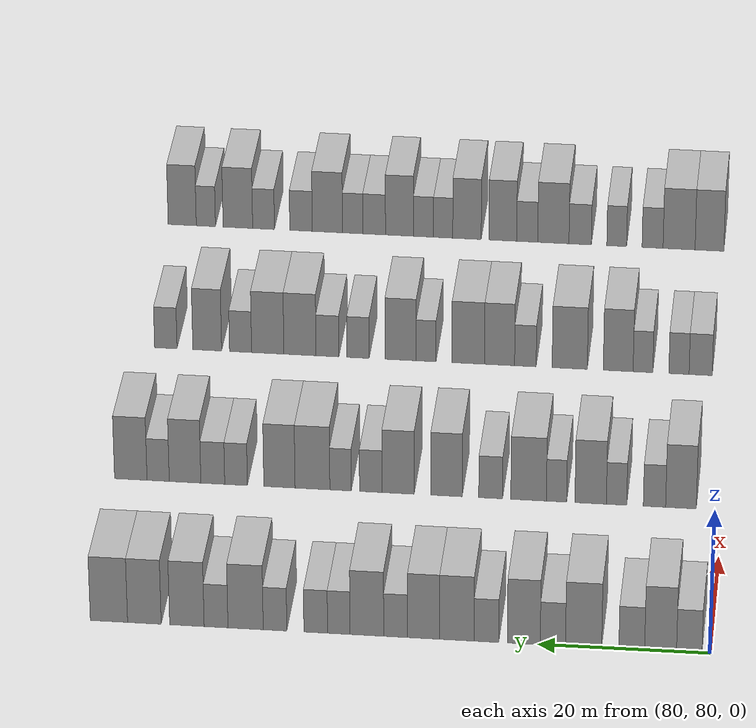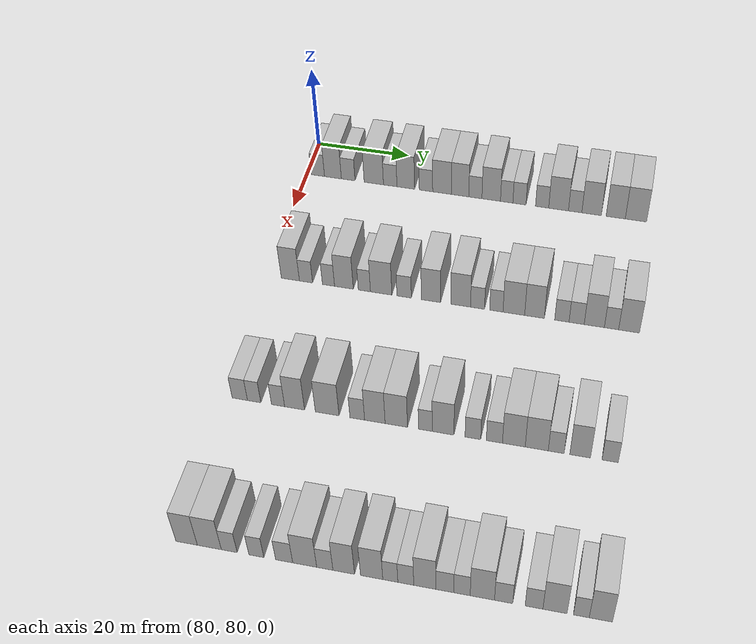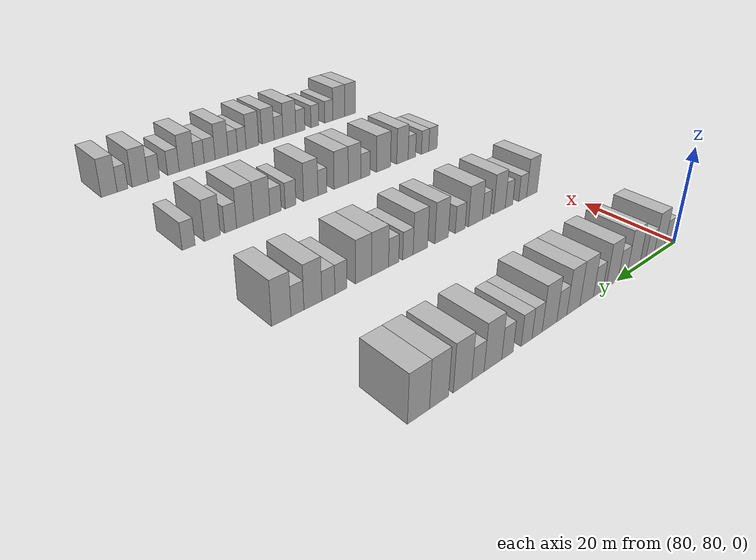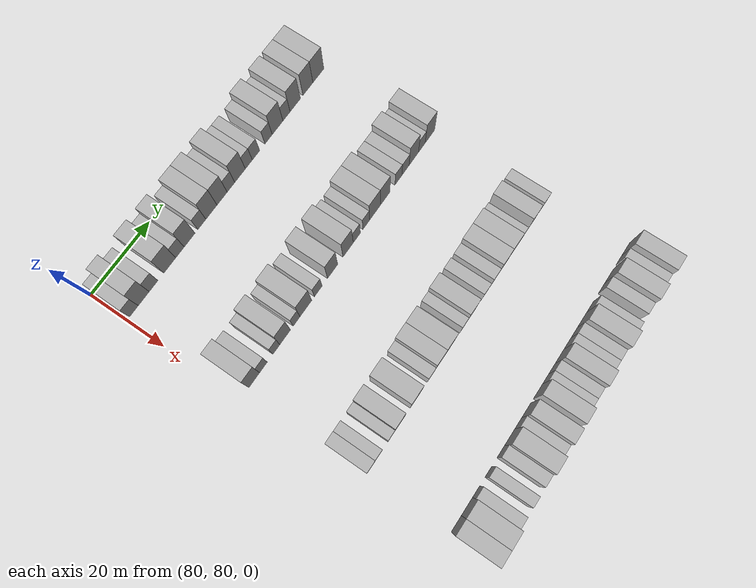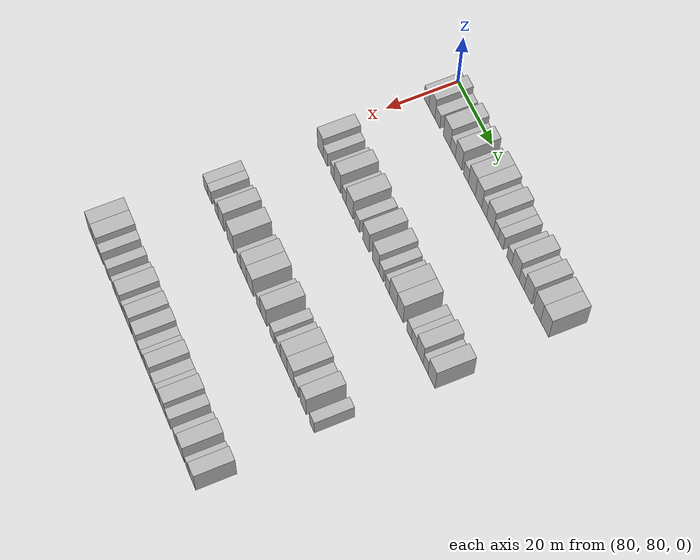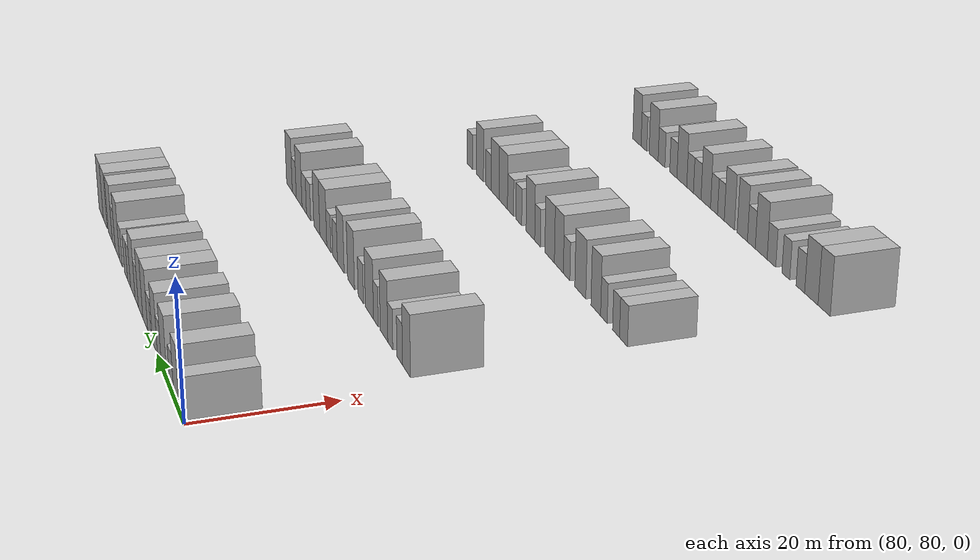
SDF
<sdf version="1.6">
 <world name="default">
  <model name="building_599">
   <static>1</static>
   <pose>85.0000 82.4342 0 0.000000 0.000000 0.000000</pose>
   <link name="link">
    <pose>0 0 3.00 0 0 0</pose>
    <collision name="collision"><geometry><box><size>10.0000 2.9456 6.0000</size></box></geometry></collision>
    <visual name="visual">
     <cast_shadows>0</cast_shadows>
     <geometry><box><size>10.0000 2.9456 6.0000</size></box></geometry>
     <material>
      <script>
       <uri>model://HANNAS_wall/materials/scripts</uri>
       <uri>model://HANNAS_wall/materials/textures</uri>
       <name>vrc/HANNAS_wall</name>
      </script>
     </material>
    </visual>
   </link>
  </model>
  <model name="building_600">
   <static>1</static>
   <pose>85.0000 85.7561 0 0.000000 0.000000 0.000000</pose>
   <link name="link">
    <pose>0 0 4.50 0 0 0</pose>
    <collision name="collision"><geometry><box><size>10.0000 3.6983 9.0000</size></box></geometry></collision>
    <visual name="visual">
     <cast_shadows>0</cast_shadows>
     <geometry><box><size>10.0000 3.6983 9.0000</size></box></geometry>
     <material>
      <script>
       <uri>model://HANNAS_wall/materials/scripts</uri>
       <uri>model://HANNAS_wall/materials/textures</uri>
       <name>vrc/HANNAS_wall</name>
      </script>
     </material>
    </visual>
   </link>
  </model>
  <model name="building_601">
   <static>1</static>
   <pose>85.0000 89.0997 0 0.000000 0.000000 0.000000</pose>
   <link name="link">
    <pose>0 0 3.00 0 0 0</pose>
    <collision name="collision"><geometry><box><size>10.0000 2.9889 6.0000</size></box></geometry></collision>
    <visual name="visual">
     <cast_shadows>0</cast_shadows>
     <geometry><box><size>10.0000 2.9889 6.0000</size></box></geometry>
     <material>
      <script>
       <uri>model://HANNAS_wall/materials/scripts</uri>
       <uri>model://HANNAS_wall/materials/textures</uri>
       <name>vrc/HANNAS_wall</name>
      </script>
     </material>
    </visual>
   </link>
  </model>
  <model name="building_602">
   <static>1</static>
   <pose>85.0000 94.6941 0 0.000000 0.000000 0.000000</pose>
   <link name="link">
    <pose>0 0 4.50 0 0 0</pose>
    <collision name="collision"><geometry><box><size>10.0000 4.1999 9.0000</size></box></geometry></collision>
    <visual name="visual">
     <cast_shadows>0</cast_shadows>
     <geometry><box><size>10.0000 4.1999 9.0000</size></box></geometry>
     <material>
      <script>
       <uri>model://HANNAS_wall/materials/scripts</uri>
       <uri>model://HANNAS_wall/materials/textures</uri>
       <name>vrc/HANNAS_wall</name>
      </script>
     </material>
    </visual>
   </link>
  </model>
  <model name="building_603">
   <static>1</static>
   <pose>85.0000 98.2586 0 0.000000 0.000000 0.000000</pose>
   <link name="link">
    <pose>0 0 3.00 0 0 0</pose>
    <collision name="collision"><geometry><box><size>10.0000 2.9291 6.0000</size></box></geometry></collision>
    <visual name="visual">
     <cast_shadows>0</cast_shadows>
     <geometry><box><size>10.0000 2.9291 6.0000</size></box></geometry>
     <material>
      <script>
       <uri>model://HANNAS_wall/materials/scripts</uri>
       <uri>model://HANNAS_wall/materials/textures</uri>
       <name>vrc/HANNAS_wall</name>
      </script>
     </material>
    </visual>
   </link>
  </model>
  <model name="building_604">
   <static>1</static>
   <pose>85.0000 101.6367 0 0.000000 0.000000 0.000000</pose>
   <link name="link">
    <pose>0 0 4.50 0 0 0</pose>
    <collision name="collision"><geometry><box><size>10.0000 3.8270 9.0000</size></box></geometry></collision>
    <visual name="visual">
     <cast_shadows>0</cast_shadows>
     <geometry><box><size>10.0000 3.8270 9.0000</size></box></geometry>
     <material>
      <script>
       <uri>model://HANNAS_wall/materials/scripts</uri>
       <uri>model://HANNAS_wall/materials/textures</uri>
       <name>vrc/HANNAS_wall</name>
      </script>
     </material>
    </visual>
   </link>
  </model>
  <model name="building_605">
   <static>1</static>
   <pose>85.0000 105.9905 0 0.000000 0.000000 0.000000</pose>
   <link name="link">
    <pose>0 0 3.00 0 0 0</pose>
    <collision name="collision"><geometry><box><size>10.0000 2.8806 6.0000</size></box></geometry></collision>
    <visual name="visual">
     <cast_shadows>0</cast_shadows>
     <geometry><box><size>10.0000 2.8806 6.0000</size></box></geometry>
     <material>
      <script>
       <uri>model://HANNAS_wall/materials/scripts</uri>
       <uri>model://HANNAS_wall/materials/textures</uri>
       <name>vrc/HANNAS_wall</name>
      </script>
     </material>
    </visual>
   </link>
  </model>
  <model name="building_606">
   <static>1</static>
   <pose>85.0000 109.4386 0 0.000000 0.000000 0.000000</pose>
   <link name="link">
    <pose>0 0 4.50 0 0 0</pose>
    <collision name="collision"><geometry><box><size>10.0000 4.0157 9.0000</size></box></geometry></collision>
    <visual name="visual">
     <cast_shadows>0</cast_shadows>
     <geometry><box><size>10.0000 4.0157 9.0000</size></box></geometry>
     <material>
      <script>
       <uri>model://HANNAS_wall/materials/scripts</uri>
       <uri>model://HANNAS_wall/materials/textures</uri>
       <name>vrc/HANNAS_wall</name>
      </script>
     </material>
    </visual>
   </link>
  </model>
  <model name="building_607">
   <static>1</static>
   <pose>85.0000 113.3110 0 0.000000 0.000000 0.000000</pose>
   <link name="link">
    <pose>0 0 4.50 0 0 0</pose>
    <collision name="collision"><geometry><box><size>10.0000 3.7289 9.0000</size></box></geometry></collision>
    <visual name="visual">
     <cast_shadows>0</cast_shadows>
     <geometry><box><size>10.0000 3.7289 9.0000</size></box></geometry>
     <material>
      <script>
       <uri>model://HANNAS_wall/materials/scripts</uri>
       <uri>model://HANNAS_wall/materials/textures</uri>
       <name>vrc/HANNAS_wall</name>
      </script>
     </material>
    </visual>
   </link>
  </model>
  <model name="building_608">
   <static>1</static>
   <pose>85.0000 116.5696 0 0.000000 0.000000 0.000000</pose>
   <link name="link">
    <pose>0 0 3.00 0 0 0</pose>
    <collision name="collision"><geometry><box><size>10.0000 2.7883 6.0000</size></box></geometry></collision>
    <visual name="visual">
     <cast_shadows>0</cast_shadows>
     <geometry><box><size>10.0000 2.7883 6.0000</size></box></geometry>
     <material>
      <script>
       <uri>model://HANNAS_wall/materials/scripts</uri>
       <uri>model://HANNAS_wall/materials/textures</uri>
       <name>vrc/HANNAS_wall</name>
      </script>
     </material>
    </visual>
   </link>
  </model>
  <model name="building_609">
   <static>1</static>
   <pose>85.0000 119.9332 0 0.000000 0.000000 0.000000</pose>
   <link name="link">
    <pose>0 0 4.50 0 0 0</pose>
    <collision name="collision"><geometry><box><size>10.0000 3.9390 9.0000</size></box></geometry></collision>
    <visual name="visual">
     <cast_shadows>0</cast_shadows>
     <geometry><box><size>10.0000 3.9390 9.0000</size></box></geometry>
     <material>
      <script>
       <uri>model://HANNAS_wall/materials/scripts</uri>
       <uri>model://HANNAS_wall/materials/textures</uri>
       <name>vrc/HANNAS_wall</name>
      </script>
     </material>
    </visual>
   </link>
  </model>
  <model name="building_610">
   <static>1</static>
   <pose>85.0000 123.2144 0 0.000000 0.000000 0.000000</pose>
   <link name="link">
    <pose>0 0 3.00 0 0 0</pose>
    <collision name="collision"><geometry><box><size>10.0000 2.6234 6.0000</size></box></geometry></collision>
    <visual name="visual">
     <cast_shadows>0</cast_shadows>
     <geometry><box><size>10.0000 2.6234 6.0000</size></box></geometry>
     <material>
      <script>
       <uri>model://HANNAS_wall/materials/scripts</uri>
       <uri>model://HANNAS_wall/materials/textures</uri>
       <name>vrc/HANNAS_wall</name>
      </script>
     </material>
    </visual>
   </link>
  </model>
  <model name="building_611">
   <static>1</static>
   <pose>85.0000 125.9106 0 0.000000 0.000000 0.000000</pose>
   <link name="link">
    <pose>0 0 3.00 0 0 0</pose>
    <collision name="collision"><geometry><box><size>10.0000 2.7690 6.0000</size></box></geometry></collision>
    <visual name="visual">
     <cast_shadows>0</cast_shadows>
     <geometry><box><size>10.0000 2.7690 6.0000</size></box></geometry>
     <material>
      <script>
       <uri>model://HANNAS_wall/materials/scripts</uri>
       <uri>model://HANNAS_wall/materials/textures</uri>
       <name>vrc/HANNAS_wall</name>
      </script>
     </material>
    </visual>
   </link>
  </model>
  <model name="building_612">
   <static>1</static>
   <pose>85.0000 130.6772 0 0.000000 0.000000 0.000000</pose>
   <link name="link">
    <pose>0 0 3.00 0 0 0</pose>
    <collision name="collision"><geometry><box><size>10.0000 2.7642 6.0000</size></box></geometry></collision>
    <visual name="visual">
     <cast_shadows>0</cast_shadows>
     <geometry><box><size>10.0000 2.7642 6.0000</size></box></geometry>
     <material>
      <script>
       <uri>model://HANNAS_wall/materials/scripts</uri>
       <uri>model://HANNAS_wall/materials/textures</uri>
       <name>vrc/HANNAS_wall</name>
      </script>
     </material>
    </visual>
   </link>
  </model>
  <model name="building_613">
   <static>1</static>
   <pose>85.0000 134.1255 0 0.000000 0.000000 0.000000</pose>
   <link name="link">
    <pose>0 0 4.50 0 0 0</pose>
    <collision name="collision"><geometry><box><size>10.0000 4.1324 9.0000</size></box></geometry></collision>
    <visual name="visual">
     <cast_shadows>0</cast_shadows>
     <geometry><box><size>10.0000 4.1324 9.0000</size></box></geometry>
     <material>
      <script>
       <uri>model://HANNAS_wall/materials/scripts</uri>
       <uri>model://HANNAS_wall/materials/textures</uri>
       <name>vrc/HANNAS_wall</name>
      </script>
     </material>
    </visual>
   </link>
  </model>
  <model name="building_614">
   <static>1</static>
   <pose>85.0000 137.5881 0 0.000000 0.000000 0.000000</pose>
   <link name="link">
    <pose>0 0 3.00 0 0 0</pose>
    <collision name="collision"><geometry><box><size>10.0000 2.7927 6.0000</size></box></geometry></collision>
    <visual name="visual">
     <cast_shadows>0</cast_shadows>
     <geometry><box><size>10.0000 2.7927 6.0000</size></box></geometry>
     <material>
      <script>
       <uri>model://HANNAS_wall/materials/scripts</uri>
       <uri>model://HANNAS_wall/materials/textures</uri>
       <name>vrc/HANNAS_wall</name>
      </script>
     </material>
    </visual>
   </link>
  </model>
  <model name="building_615">
   <static>1</static>
   <pose>85.0000 141.0087 0 0.000000 0.000000 0.000000</pose>
   <link name="link">
    <pose>0 0 4.50 0 0 0</pose>
    <collision name="collision"><geometry><box><size>10.0000 4.0487 9.0000</size></box></geometry></collision>
    <visual name="visual">
     <cast_shadows>0</cast_shadows>
     <geometry><box><size>10.0000 4.0487 9.0000</size></box></geometry>
     <material>
      <script>
       <uri>model://HANNAS_wall/materials/scripts</uri>
       <uri>model://HANNAS_wall/materials/textures</uri>
       <name>vrc/HANNAS_wall</name>
      </script>
     </material>
    </visual>
   </link>
  </model>
  <model name="building_616">
   <static>1</static>
   <pose>85.0000 146.0088 0 0.000000 0.000000 0.000000</pose>
   <link name="link">
    <pose>0 0 4.50 0 0 0</pose>
    <collision name="collision"><geometry><box><size>10.0000 3.9513 9.0000</size></box></geometry></collision>
    <visual name="visual">
     <cast_shadows>0</cast_shadows>
     <geometry><box><size>10.0000 3.9513 9.0000</size></box></geometry>
     <material>
      <script>
       <uri>model://HANNAS_wall/materials/scripts</uri>
       <uri>model://HANNAS_wall/materials/textures</uri>
       <name>vrc/HANNAS_wall</name>
      </script>
     </material>
    </visual>
   </link>
  </model>
  <model name="building_617">
   <static>1</static>
   <pose>85.0000 150.1728 0 0.000000 0.000000 0.000000</pose>
   <link name="link">
    <pose>0 0 4.50 0 0 0</pose>
    <collision name="collision"><geometry><box><size>10.0000 4.3768 9.0000</size></box></geometry></collision>
    <visual name="visual">
     <cast_shadows>0</cast_shadows>
     <geometry><box><size>10.0000 4.3768 9.0000</size></box></geometry>
     <material>
      <script>
       <uri>model://HANNAS_wall/materials/scripts</uri>
       <uri>model://HANNAS_wall/materials/textures</uri>
       <name>vrc/HANNAS_wall</name>
      </script>
     </material>
    </visual>
   </link>
  </model>
  <model name="building_826">
   <static>1</static>
   <pose>115.0000 85.0872 0 0.000000 0.000000 0.000000</pose>
   <link name="link">
    <pose>0 0 4.50 0 0 0</pose>
    <collision name="collision"><geometry><box><size>10.0000 3.6894 9.0000</size></box></geometry></collision>
    <visual name="visual">
     <cast_shadows>0</cast_shadows>
     <geometry><box><size>10.0000 3.6894 9.0000</size></box></geometry>
     <material>
      <script>
       <uri>model://HANNAS_wall/materials/scripts</uri>
       <uri>model://HANNAS_wall/materials/textures</uri>
       <name>vrc/HANNAS_wall</name>
      </script>
     </material>
    </visual>
   </link>
  </model>
  <model name="building_827">
   <static>1</static>
   <pose>115.0000 88.2741 0 0.000000 0.000000 0.000000</pose>
   <link name="link">
    <pose>0 0 3.00 0 0 0</pose>
    <collision name="collision"><geometry><box><size>10.0000 2.6844 6.0000</size></box></geometry></collision>
    <visual name="visual">
     <cast_shadows>0</cast_shadows>
     <geometry><box><size>10.0000 2.6844 6.0000</size></box></geometry>
     <material>
      <script>
       <uri>model://HANNAS_wall/materials/scripts</uri>
       <uri>model://HANNAS_wall/materials/textures</uri>
       <name>vrc/HANNAS_wall</name>
      </script>
     </material>
    </visual>
   </link>
  </model>
  <model name="building_828">
   <static>1</static>
   <pose>115.0000 92.8427 0 0.000000 0.000000 0.000000</pose>
   <link name="link">
    <pose>0 0 3.00 0 0 0</pose>
    <collision name="collision"><geometry><box><size>10.0000 2.4529 6.0000</size></box></geometry></collision>
    <visual name="visual">
     <cast_shadows>0</cast_shadows>
     <geometry><box><size>10.0000 2.4529 6.0000</size></box></geometry>
     <material>
      <script>
       <uri>model://HANNAS_wall/materials/scripts</uri>
       <uri>model://HANNAS_wall/materials/textures</uri>
       <name>vrc/HANNAS_wall</name>
      </script>
     </material>
    </visual>
   </link>
  </model>
  <model name="building_829">
   <static>1</static>
   <pose>115.0000 95.9619 0 0.000000 0.000000 0.000000</pose>
   <link name="link">
    <pose>0 0 4.50 0 0 0</pose>
    <collision name="collision"><geometry><box><size>10.0000 3.7856 9.0000</size></box></geometry></collision>
    <visual name="visual">
     <cast_shadows>0</cast_shadows>
     <geometry><box><size>10.0000 3.7856 9.0000</size></box></geometry>
     <material>
      <script>
       <uri>model://HANNAS_wall/materials/scripts</uri>
       <uri>model://HANNAS_wall/materials/textures</uri>
       <name>vrc/HANNAS_wall</name>
      </script>
     </material>
    </visual>
   </link>
  </model>
  <model name="building_830">
   <static>1</static>
   <pose>115.0000 100.0785 0 0.000000 0.000000 0.000000</pose>
   <link name="link">
    <pose>0 0 3.00 0 0 0</pose>
    <collision name="collision"><geometry><box><size>10.0000 2.4476 6.0000</size></box></geometry></collision>
    <visual name="visual">
     <cast_shadows>0</cast_shadows>
     <geometry><box><size>10.0000 2.4476 6.0000</size></box></geometry>
     <material>
      <script>
       <uri>model://HANNAS_wall/materials/scripts</uri>
       <uri>model://HANNAS_wall/materials/textures</uri>
       <name>vrc/HANNAS_wall</name>
      </script>
     </material>
    </visual>
   </link>
  </model>
  <model name="building_831">
   <static>1</static>
   <pose>115.0000 103.4479 0 0.000000 0.000000 0.000000</pose>
   <link name="link">
    <pose>0 0 4.50 0 0 0</pose>
    <collision name="collision"><geometry><box><size>10.0000 4.2911 9.0000</size></box></geometry></collision>
    <visual name="visual">
     <cast_shadows>0</cast_shadows>
     <geometry><box><size>10.0000 4.2911 9.0000</size></box></geometry>
     <material>
      <script>
       <uri>model://HANNAS_wall/materials/scripts</uri>
       <uri>model://HANNAS_wall/materials/textures</uri>
       <name>vrc/HANNAS_wall</name>
      </script>
     </material>
    </visual>
   </link>
  </model>
  <model name="building_832">
   <static>1</static>
   <pose>115.0000 108.0309 0 0.000000 0.000000 0.000000</pose>
   <link name="link">
    <pose>0 0 3.00 0 0 0</pose>
    <collision name="collision"><geometry><box><size>10.0000 2.8750 6.0000</size></box></geometry></collision>
    <visual name="visual">
     <cast_shadows>0</cast_shadows>
     <geometry><box><size>10.0000 2.8750 6.0000</size></box></geometry>
     <material>
      <script>
       <uri>model://HANNAS_wall/materials/scripts</uri>
       <uri>model://HANNAS_wall/materials/textures</uri>
       <name>vrc/HANNAS_wall</name>
      </script>
     </material>
    </visual>
   </link>
  </model>
  <model name="building_833">
   <static>1</static>
   <pose>115.0000 113.3733 0 0.000000 0.000000 0.000000</pose>
   <link name="link">
    <pose>0 0 4.50 0 0 0</pose>
    <collision name="collision"><geometry><box><size>10.0000 3.8098 9.0000</size></box></geometry></collision>
    <visual name="visual">
     <cast_shadows>0</cast_shadows>
     <geometry><box><size>10.0000 3.8098 9.0000</size></box></geometry>
     <material>
      <script>
       <uri>model://HANNAS_wall/materials/scripts</uri>
       <uri>model://HANNAS_wall/materials/textures</uri>
       <name>vrc/HANNAS_wall</name>
      </script>
     </material>
    </visual>
   </link>
  </model>
  <model name="building_834">
   <static>1</static>
   <pose>115.0000 119.2258 0 0.000000 0.000000 0.000000</pose>
   <link name="link">
    <pose>0 0 4.50 0 0 0</pose>
    <collision name="collision"><geometry><box><size>10.0000 3.8952 9.0000</size></box></geometry></collision>
    <visual name="visual">
     <cast_shadows>0</cast_shadows>
     <geometry><box><size>10.0000 3.8952 9.0000</size></box></geometry>
     <material>
      <script>
       <uri>model://HANNAS_wall/materials/scripts</uri>
       <uri>model://HANNAS_wall/materials/textures</uri>
       <name>vrc/HANNAS_wall</name>
      </script>
     </material>
    </visual>
   </link>
  </model>
  <model name="building_835">
   <static>1</static>
   <pose>115.0000 122.5412 0 0.000000 0.000000 0.000000</pose>
   <link name="link">
    <pose>0 0 3.00 0 0 0</pose>
    <collision name="collision"><geometry><box><size>10.0000 2.7357 6.0000</size></box></geometry></collision>
    <visual name="visual">
     <cast_shadows>0</cast_shadows>
     <geometry><box><size>10.0000 2.7357 6.0000</size></box></geometry>
     <material>
      <script>
       <uri>model://HANNAS_wall/materials/scripts</uri>
       <uri>model://HANNAS_wall/materials/textures</uri>
       <name>vrc/HANNAS_wall</name>
      </script>
     </material>
    </visual>
   </link>
  </model>
  <model name="building_836">
   <static>1</static>
   <pose>115.0000 126.2110 0 0.000000 0.000000 0.000000</pose>
   <link name="link">
    <pose>0 0 3.00 0 0 0</pose>
    <collision name="collision"><geometry><box><size>10.0000 2.6039 6.0000</size></box></geometry></collision>
    <visual name="visual">
     <cast_shadows>0</cast_shadows>
     <geometry><box><size>10.0000 2.6039 6.0000</size></box></geometry>
     <material>
      <script>
       <uri>model://HANNAS_wall/materials/scripts</uri>
       <uri>model://HANNAS_wall/materials/textures</uri>
       <name>vrc/HANNAS_wall</name>
      </script>
     </material>
    </visual>
   </link>
  </model>
  <model name="building_837">
   <static>1</static>
   <pose>115.0000 129.6225 0 0.000000 0.000000 0.000000</pose>
   <link name="link">
    <pose>0 0 4.50 0 0 0</pose>
    <collision name="collision"><geometry><box><size>10.0000 4.2190 9.0000</size></box></geometry></collision>
    <visual name="visual">
     <cast_shadows>0</cast_shadows>
     <geometry><box><size>10.0000 4.2190 9.0000</size></box></geometry>
     <material>
      <script>
       <uri>model://HANNAS_wall/materials/scripts</uri>
       <uri>model://HANNAS_wall/materials/textures</uri>
       <name>vrc/HANNAS_wall</name>
      </script>
     </material>
    </visual>
   </link>
  </model>
  <model name="building_838">
   <static>1</static>
   <pose>115.0000 133.6316 0 0.000000 0.000000 0.000000</pose>
   <link name="link">
    <pose>0 0 4.50 0 0 0</pose>
    <collision name="collision"><geometry><box><size>10.0000 3.7993 9.0000</size></box></geometry></collision>
    <visual name="visual">
     <cast_shadows>0</cast_shadows>
     <geometry><box><size>10.0000 3.7993 9.0000</size></box></geometry>
     <material>
      <script>
       <uri>model://HANNAS_wall/materials/scripts</uri>
       <uri>model://HANNAS_wall/materials/textures</uri>
       <name>vrc/HANNAS_wall</name>
      </script>
     </material>
    </visual>
   </link>
  </model>
  <model name="building_839">
   <static>1</static>
   <pose>115.0000 138.9121 0 0.000000 0.000000 0.000000</pose>
   <link name="link">
    <pose>0 0 3.00 0 0 0</pose>
    <collision name="collision"><geometry><box><size>10.0000 2.7617 6.0000</size></box></geometry></collision>
    <visual name="visual">
     <cast_shadows>0</cast_shadows>
     <geometry><box><size>10.0000 2.7617 6.0000</size></box></geometry>
     <material>
      <script>
       <uri>model://HANNAS_wall/materials/scripts</uri>
       <uri>model://HANNAS_wall/materials/textures</uri>
       <name>vrc/HANNAS_wall</name>
      </script>
     </material>
    </visual>
   </link>
  </model>
  <model name="building_840">
   <static>1</static>
   <pose>115.0000 141.7462 0 0.000000 0.000000 0.000000</pose>
   <link name="link">
    <pose>0 0 3.00 0 0 0</pose>
    <collision name="collision"><geometry><box><size>10.0000 2.9064 6.0000</size></box></geometry></collision>
    <visual name="visual">
     <cast_shadows>0</cast_shadows>
     <geometry><box><size>10.0000 2.9064 6.0000</size></box></geometry>
     <material>
      <script>
       <uri>model://HANNAS_wall/materials/scripts</uri>
       <uri>model://HANNAS_wall/materials/textures</uri>
       <name>vrc/HANNAS_wall</name>
      </script>
     </material>
    </visual>
   </link>
  </model>
  <model name="building_841">
   <static>1</static>
   <pose>115.0000 145.1262 0 0.000000 0.000000 0.000000</pose>
   <link name="link">
    <pose>0 0 4.50 0 0 0</pose>
    <collision name="collision"><geometry><box><size>10.0000 3.8536 9.0000</size></box></geometry></collision>
    <visual name="visual">
     <cast_shadows>0</cast_shadows>
     <geometry><box><size>10.0000 3.8536 9.0000</size></box></geometry>
     <material>
      <script>
       <uri>model://HANNAS_wall/materials/scripts</uri>
       <uri>model://HANNAS_wall/materials/textures</uri>
       <name>vrc/HANNAS_wall</name>
      </script>
     </material>
    </visual>
   </link>
  </model>
  <model name="building_842">
   <static>1</static>
   <pose>115.0000 148.4080 0 0.000000 0.000000 0.000000</pose>
   <link name="link">
    <pose>0 0 3.00 0 0 0</pose>
    <collision name="collision"><geometry><box><size>10.0000 2.7101 6.0000</size></box></geometry></collision>
    <visual name="visual">
     <cast_shadows>0</cast_shadows>
     <geometry><box><size>10.0000 2.7101 6.0000</size></box></geometry>
     <material>
      <script>
       <uri>model://HANNAS_wall/materials/scripts</uri>
       <uri>model://HANNAS_wall/materials/textures</uri>
       <name>vrc/HANNAS_wall</name>
      </script>
     </material>
    </visual>
   </link>
  </model>
  <model name="building_843">
   <static>1</static>
   <pose>115.0000 151.7421 0 0.000000 0.000000 0.000000</pose>
   <link name="link">
    <pose>0 0 4.50 0 0 0</pose>
    <collision name="collision"><geometry><box><size>10.0000 3.9582 9.0000</size></box></geometry></collision>
    <visual name="visual">
     <cast_shadows>0</cast_shadows>
     <geometry><box><size>10.0000 3.9582 9.0000</size></box></geometry>
     <material>
      <script>
       <uri>model://HANNAS_wall/materials/scripts</uri>
       <uri>model://HANNAS_wall/materials/textures</uri>
       <name>vrc/HANNAS_wall</name>
      </script>
     </material>
    </visual>
   </link>
  </model>
  <model name="building_1059">
   <static>1</static>
   <pose>145.0000 84.3228 0 0.000000 0.000000 0.000000</pose>
   <link name="link">
    <pose>0 0 3.00 0 0 0</pose>
    <collision name="collision"><geometry><box><size>10.0000 2.8881 6.0000</size></box></geometry></collision>
    <visual name="visual">
     <cast_shadows>0</cast_shadows>
     <geometry><box><size>10.0000 2.8881 6.0000</size></box></geometry>
     <material>
      <script>
       <uri>model://HANNAS_wall/materials/scripts</uri>
       <uri>model://HANNAS_wall/materials/textures</uri>
       <name>vrc/HANNAS_wall</name>
      </script>
     </material>
    </visual>
   </link>
  </model>
  <model name="building_1060">
   <static>1</static>
   <pose>145.0000 87.0273 0 0.000000 0.000000 0.000000</pose>
   <link name="link">
    <pose>0 0 3.00 0 0 0</pose>
    <collision name="collision"><geometry><box><size>10.0000 2.5209 6.0000</size></box></geometry></collision>
    <visual name="visual">
     <cast_shadows>0</cast_shadows>
     <geometry><box><size>10.0000 2.5209 6.0000</size></box></geometry>
     <material>
      <script>
       <uri>model://HANNAS_wall/materials/scripts</uri>
       <uri>model://HANNAS_wall/materials/textures</uri>
       <name>vrc/HANNAS_wall</name>
      </script>
     </material>
    </visual>
   </link>
  </model>
  <model name="building_1061">
   <static>1</static>
   <pose>145.0000 91.5177 0 0.000000 0.000000 0.000000</pose>
   <link name="link">
    <pose>0 0 3.00 0 0 0</pose>
    <collision name="collision"><geometry><box><size>10.0000 2.4597 6.0000</size></box></geometry></collision>
    <visual name="visual">
     <cast_shadows>0</cast_shadows>
     <geometry><box><size>10.0000 2.4597 6.0000</size></box></geometry>
     <material>
      <script>
       <uri>model://HANNAS_wall/materials/scripts</uri>
       <uri>model://HANNAS_wall/materials/textures</uri>
       <name>vrc/HANNAS_wall</name>
      </script>
     </material>
    </visual>
   </link>
  </model>
  <model name="building_1062">
   <static>1</static>
   <pose>145.0000 94.6092 0 0.000000 0.000000 0.000000</pose>
   <link name="link">
    <pose>0 0 4.50 0 0 0</pose>
    <collision name="collision"><geometry><box><size>10.0000 3.7234 9.0000</size></box></geometry></collision>
    <visual name="visual">
     <cast_shadows>0</cast_shadows>
     <geometry><box><size>10.0000 3.7234 9.0000</size></box></geometry>
     <material>
      <script>
       <uri>model://HANNAS_wall/materials/scripts</uri>
       <uri>model://HANNAS_wall/materials/textures</uri>
       <name>vrc/HANNAS_wall</name>
      </script>
     </material>
    </visual>
   </link>
  </model>
  <model name="building_1063">
   <static>1</static>
   <pose>145.0000 100.6682 0 0.000000 0.000000 0.000000</pose>
   <link name="link">
    <pose>0 0 4.50 0 0 0</pose>
    <collision name="collision"><geometry><box><size>10.0000 4.3946 9.0000</size></box></geometry></collision>
    <visual name="visual">
     <cast_shadows>0</cast_shadows>
     <geometry><box><size>10.0000 4.3946 9.0000</size></box></geometry>
     <material>
      <script>
       <uri>model://HANNAS_wall/materials/scripts</uri>
       <uri>model://HANNAS_wall/materials/textures</uri>
       <name>vrc/HANNAS_wall</name>
      </script>
     </material>
    </visual>
   </link>
  </model>
  <model name="building_1064">
   <static>1</static>
   <pose>145.0000 106.2151 0 0.000000 0.000000 0.000000</pose>
   <link name="link">
    <pose>0 0 3.00 0 0 0</pose>
    <collision name="collision"><geometry><box><size>10.0000 2.6991 6.0000</size></box></geometry></collision>
    <visual name="visual">
     <cast_shadows>0</cast_shadows>
     <geometry><box><size>10.0000 2.6991 6.0000</size></box></geometry>
     <material>
      <script>
       <uri>model://HANNAS_wall/materials/scripts</uri>
       <uri>model://HANNAS_wall/materials/textures</uri>
       <name>vrc/HANNAS_wall</name>
      </script>
     </material>
    </visual>
   </link>
  </model>
  <model name="building_1065">
   <static>1</static>
   <pose>145.0000 109.4443 0 0.000000 0.000000 0.000000</pose>
   <link name="link">
    <pose>0 0 4.50 0 0 0</pose>
    <collision name="collision"><geometry><box><size>10.0000 3.7592 9.0000</size></box></geometry></collision>
    <visual name="visual">
     <cast_shadows>0</cast_shadows>
     <geometry><box><size>10.0000 3.7592 9.0000</size></box></geometry>
     <material>
      <script>
       <uri>model://HANNAS_wall/materials/scripts</uri>
       <uri>model://HANNAS_wall/materials/textures</uri>
       <name>vrc/HANNAS_wall</name>
      </script>
     </material>
    </visual>
   </link>
  </model>
  <model name="building_1066">
   <static>1</static>
   <pose>145.0000 113.3664 0 0.000000 0.000000 0.000000</pose>
   <link name="link">
    <pose>0 0 4.50 0 0 0</pose>
    <collision name="collision"><geometry><box><size>10.0000 4.0850 9.0000</size></box></geometry></collision>
    <visual name="visual">
     <cast_shadows>0</cast_shadows>
     <geometry><box><size>10.0000 4.0850 9.0000</size></box></geometry>
     <material>
      <script>
       <uri>model://HANNAS_wall/materials/scripts</uri>
       <uri>model://HANNAS_wall/materials/textures</uri>
       <name>vrc/HANNAS_wall</name>
      </script>
     </material>
    </visual>
   </link>
  </model>
  <model name="building_1067">
   <static>1</static>
   <pose>145.0000 118.6525 0 0.000000 0.000000 0.000000</pose>
   <link name="link">
    <pose>0 0 3.00 0 0 0</pose>
    <collision name="collision"><geometry><box><size>10.0000 2.4872 6.0000</size></box></geometry></collision>
    <visual name="visual">
     <cast_shadows>0</cast_shadows>
     <geometry><box><size>10.0000 2.4872 6.0000</size></box></geometry>
     <material>
      <script>
       <uri>model://HANNAS_wall/materials/scripts</uri>
       <uri>model://HANNAS_wall/materials/textures</uri>
       <name>vrc/HANNAS_wall</name>
      </script>
     </material>
    </visual>
   </link>
  </model>
  <model name="building_1068">
   <static>1</static>
   <pose>145.0000 121.8524 0 0.000000 0.000000 0.000000</pose>
   <link name="link">
    <pose>0 0 4.50 0 0 0</pose>
    <collision name="collision"><geometry><box><size>10.0000 3.9126 9.0000</size></box></geometry></collision>
    <visual name="visual">
     <cast_shadows>0</cast_shadows>
     <geometry><box><size>10.0000 3.9126 9.0000</size></box></geometry>
     <material>
      <script>
       <uri>model://HANNAS_wall/materials/scripts</uri>
       <uri>model://HANNAS_wall/materials/textures</uri>
       <name>vrc/HANNAS_wall</name>
      </script>
     </material>
    </visual>
   </link>
  </model>
  <model name="building_1069">
   <static>1</static>
   <pose>145.0000 127.2126 0 0.000000 0.000000 0.000000</pose>
   <link name="link">
    <pose>0 0 3.00 0 0 0</pose>
    <collision name="collision"><geometry><box><size>10.0000 2.8079 6.0000</size></box></geometry></collision>
    <visual name="visual">
     <cast_shadows>0</cast_shadows>
     <geometry><box><size>10.0000 2.8079 6.0000</size></box></geometry>
     <material>
      <script>
       <uri>model://HANNAS_wall/materials/scripts</uri>
       <uri>model://HANNAS_wall/materials/textures</uri>
       <name>vrc/HANNAS_wall</name>
      </script>
     </material>
    </visual>
   </link>
  </model>
  <model name="building_1070">
   <static>1</static>
   <pose>145.0000 131.0553 0 0.000000 0.000000 0.000000</pose>
   <link name="link">
    <pose>0 0 3.00 0 0 0</pose>
    <collision name="collision"><geometry><box><size>10.0000 2.8774 6.0000</size></box></geometry></collision>
    <visual name="visual">
     <cast_shadows>0</cast_shadows>
     <geometry><box><size>10.0000 2.8774 6.0000</size></box></geometry>
     <material>
      <script>
       <uri>model://HANNAS_wall/materials/scripts</uri>
       <uri>model://HANNAS_wall/materials/textures</uri>
       <name>vrc/HANNAS_wall</name>
      </script>
     </material>
    </visual>
   </link>
  </model>
  <model name="building_1071">
   <static>1</static>
   <pose>145.0000 134.5196 0 0.000000 0.000000 0.000000</pose>
   <link name="link">
    <pose>0 0 4.50 0 0 0</pose>
    <collision name="collision"><geometry><box><size>10.0000 4.0513 9.0000</size></box></geometry></collision>
    <visual name="visual">
     <cast_shadows>0</cast_shadows>
     <geometry><box><size>10.0000 4.0513 9.0000</size></box></geometry>
     <material>
      <script>
       <uri>model://HANNAS_wall/materials/scripts</uri>
       <uri>model://HANNAS_wall/materials/textures</uri>
       <name>vrc/HANNAS_wall</name>
      </script>
     </material>
    </visual>
   </link>
  </model>
  <model name="building_1072">
   <static>1</static>
   <pose>145.0000 138.5822 0 0.000000 0.000000 0.000000</pose>
   <link name="link">
    <pose>0 0 4.50 0 0 0</pose>
    <collision name="collision"><geometry><box><size>10.0000 4.0738 9.0000</size></box></geometry></collision>
    <visual name="visual">
     <cast_shadows>0</cast_shadows>
     <geometry><box><size>10.0000 4.0738 9.0000</size></box></geometry>
     <material>
      <script>
       <uri>model://HANNAS_wall/materials/scripts</uri>
       <uri>model://HANNAS_wall/materials/textures</uri>
       <name>vrc/HANNAS_wall</name>
      </script>
     </material>
    </visual>
   </link>
  </model>
  <model name="building_1073">
   <static>1</static>
   <pose>145.0000 142.0116 0 0.000000 0.000000 0.000000</pose>
   <link name="link">
    <pose>0 0 3.00 0 0 0</pose>
    <collision name="collision"><geometry><box><size>10.0000 2.7849 6.0000</size></box></geometry></collision>
    <visual name="visual">
     <cast_shadows>0</cast_shadows>
     <geometry><box><size>10.0000 2.7849 6.0000</size></box></geometry>
     <material>
      <script>
       <uri>model://HANNAS_wall/materials/scripts</uri>
       <uri>model://HANNAS_wall/materials/textures</uri>
       <name>vrc/HANNAS_wall</name>
      </script>
     </material>
    </visual>
   </link>
  </model>
  <model name="building_1074">
   <static>1</static>
   <pose>145.0000 146.2197 0 0.000000 0.000000 0.000000</pose>
   <link name="link">
    <pose>0 0 4.50 0 0 0</pose>
    <collision name="collision"><geometry><box><size>10.0000 3.6313 9.0000</size></box></geometry></collision>
    <visual name="visual">
     <cast_shadows>0</cast_shadows>
     <geometry><box><size>10.0000 3.6313 9.0000</size></box></geometry>
     <material>
      <script>
       <uri>model://HANNAS_wall/materials/scripts</uri>
       <uri>model://HANNAS_wall/materials/textures</uri>
       <name>vrc/HANNAS_wall</name>
      </script>
     </material>
    </visual>
   </link>
  </model>
  <model name="building_1075">
   <static>1</static>
   <pose>145.0000 151.4515 0 0.000000 0.000000 0.000000</pose>
   <link name="link">
    <pose>0 0 3.00 0 0 0</pose>
    <collision name="collision"><geometry><box><size>10.0000 2.8323 6.0000</size></box></geometry></collision>
    <visual name="visual">
     <cast_shadows>0</cast_shadows>
     <geometry><box><size>10.0000 2.8323 6.0000</size></box></geometry>
     <material>
      <script>
       <uri>model://HANNAS_wall/materials/scripts</uri>
       <uri>model://HANNAS_wall/materials/textures</uri>
       <name>vrc/HANNAS_wall</name>
      </script>
     </material>
    </visual>
   </link>
  </model>
  <model name="building_1290">
   <static>1</static>
   <pose>175.0000 84.7911 0 0.000000 0.000000 0.000000</pose>
   <link name="link">
    <pose>0 0 4.50 0 0 0</pose>
    <collision name="collision"><geometry><box><size>10.0000 3.7116 9.0000</size></box></geometry></collision>
    <visual name="visual">
     <cast_shadows>0</cast_shadows>
     <geometry><box><size>10.0000 3.7116 9.0000</size></box></geometry>
     <material>
      <script>
       <uri>model://HANNAS_wall/materials/scripts</uri>
       <uri>model://HANNAS_wall/materials/textures</uri>
       <name>vrc/HANNAS_wall</name>
      </script>
     </material>
    </visual>
   </link>
  </model>
  <model name="building_1291">
   <static>1</static>
   <pose>175.0000 88.7138 0 0.000000 0.000000 0.000000</pose>
   <link name="link">
    <pose>0 0 4.50 0 0 0</pose>
    <collision name="collision"><geometry><box><size>10.0000 4.1338 9.0000</size></box></geometry></collision>
    <visual name="visual">
     <cast_shadows>0</cast_shadows>
     <geometry><box><size>10.0000 4.1338 9.0000</size></box></geometry>
     <material>
      <script>
       <uri>model://HANNAS_wall/materials/scripts</uri>
       <uri>model://HANNAS_wall/materials/textures</uri>
       <name>vrc/HANNAS_wall</name>
      </script>
     </material>
    </visual>
   </link>
  </model>
  <model name="building_1292">
   <static>1</static>
   <pose>175.0000 92.1371 0 0.000000 0.000000 0.000000</pose>
   <link name="link">
    <pose>0 0 3.00 0 0 0</pose>
    <collision name="collision"><geometry><box><size>10.0000 2.7129 6.0000</size></box></geometry></collision>
    <visual name="visual">
     <cast_shadows>0</cast_shadows>
     <geometry><box><size>10.0000 2.7129 6.0000</size></box></geometry>
     <material>
      <script>
       <uri>model://HANNAS_wall/materials/scripts</uri>
       <uri>model://HANNAS_wall/materials/textures</uri>
       <name>vrc/HANNAS_wall</name>
      </script>
     </material>
    </visual>
   </link>
  </model>
  <model name="building_1293">
   <static>1</static>
   <pose>175.0000 96.7716 0 0.000000 0.000000 0.000000</pose>
   <link name="link">
    <pose>0 0 3.00 0 0 0</pose>
    <collision name="collision"><geometry><box><size>10.0000 2.5561 6.0000</size></box></geometry></collision>
    <visual name="visual">
     <cast_shadows>0</cast_shadows>
     <geometry><box><size>10.0000 2.5561 6.0000</size></box></geometry>
     <material>
      <script>
       <uri>model://HANNAS_wall/materials/scripts</uri>
       <uri>model://HANNAS_wall/materials/textures</uri>
       <name>vrc/HANNAS_wall</name>
      </script>
     </material>
    </visual>
   </link>
  </model>
  <model name="building_1294">
   <static>1</static>
   <pose>175.0000 101.4989 0 0.000000 0.000000 0.000000</pose>
   <link name="link">
    <pose>0 0 3.00 0 0 0</pose>
    <collision name="collision"><geometry><box><size>10.0000 2.8984 6.0000</size></box></geometry></collision>
    <visual name="visual">
     <cast_shadows>0</cast_shadows>
     <geometry><box><size>10.0000 2.8984 6.0000</size></box></geometry>
     <material>
      <script>
       <uri>model://HANNAS_wall/materials/scripts</uri>
       <uri>model://HANNAS_wall/materials/textures</uri>
       <name>vrc/HANNAS_wall</name>
      </script>
     </material>
    </visual>
   </link>
  </model>
  <model name="building_1295">
   <static>1</static>
   <pose>175.0000 104.9706 0 0.000000 0.000000 0.000000</pose>
   <link name="link">
    <pose>0 0 4.50 0 0 0</pose>
    <collision name="collision"><geometry><box><size>10.0000 4.0451 9.0000</size></box></geometry></collision>
    <visual name="visual">
     <cast_shadows>0</cast_shadows>
     <geometry><box><size>10.0000 4.0451 9.0000</size></box></geometry>
     <material>
      <script>
       <uri>model://HANNAS_wall/materials/scripts</uri>
       <uri>model://HANNAS_wall/materials/textures</uri>
       <name>vrc/HANNAS_wall</name>
      </script>
     </material>
    </visual>
   </link>
  </model>
  <model name="building_1296">
   <static>1</static>
   <pose>175.0000 108.3560 0 0.000000 0.000000 0.000000</pose>
   <link name="link">
    <pose>0 0 3.00 0 0 0</pose>
    <collision name="collision"><geometry><box><size>10.0000 2.7256 6.0000</size></box></geometry></collision>
    <visual name="visual">
     <cast_shadows>0</cast_shadows>
     <geometry><box><size>10.0000 2.7256 6.0000</size></box></geometry>
     <material>
      <script>
       <uri>model://HANNAS_wall/materials/scripts</uri>
       <uri>model://HANNAS_wall/materials/textures</uri>
       <name>vrc/HANNAS_wall</name>
      </script>
     </material>
    </visual>
   </link>
  </model>
  <model name="building_1297">
   <static>1</static>
   <pose>175.0000 111.5226 0 0.000000 0.000000 0.000000</pose>
   <link name="link">
    <pose>0 0 4.50 0 0 0</pose>
    <collision name="collision"><geometry><box><size>10.0000 3.6076 9.0000</size></box></geometry></collision>
    <visual name="visual">
     <cast_shadows>0</cast_shadows>
     <geometry><box><size>10.0000 3.6076 9.0000</size></box></geometry>
     <material>
      <script>
       <uri>model://HANNAS_wall/materials/scripts</uri>
       <uri>model://HANNAS_wall/materials/textures</uri>
       <name>vrc/HANNAS_wall</name>
      </script>
     </material>
    </visual>
   </link>
  </model>
  <model name="building_1298">
   <static>1</static>
   <pose>175.0000 116.1713 0 0.000000 0.000000 0.000000</pose>
   <link name="link">
    <pose>0 0 4.50 0 0 0</pose>
    <collision name="collision"><geometry><box><size>10.0000 3.6898 9.0000</size></box></geometry></collision>
    <visual name="visual">
     <cast_shadows>0</cast_shadows>
     <geometry><box><size>10.0000 3.6898 9.0000</size></box></geometry>
     <material>
      <script>
       <uri>model://HANNAS_wall/materials/scripts</uri>
       <uri>model://HANNAS_wall/materials/textures</uri>
       <name>vrc/HANNAS_wall</name>
      </script>
     </material>
    </visual>
   </link>
  </model>
  <model name="building_1299">
   <static>1</static>
   <pose>175.0000 119.2639 0 0.000000 0.000000 0.000000</pose>
   <link name="link">
    <pose>0 0 3.00 0 0 0</pose>
    <collision name="collision"><geometry><box><size>10.0000 2.4955 6.0000</size></box></geometry></collision>
    <visual name="visual">
     <cast_shadows>0</cast_shadows>
     <geometry><box><size>10.0000 2.4955 6.0000</size></box></geometry>
     <material>
      <script>
       <uri>model://HANNAS_wall/materials/scripts</uri>
       <uri>model://HANNAS_wall/materials/textures</uri>
       <name>vrc/HANNAS_wall</name>
      </script>
     </material>
    </visual>
   </link>
  </model>
  <model name="building_1300">
   <static>1</static>
   <pose>175.0000 121.8220 0 0.000000 0.000000 0.000000</pose>
   <link name="link">
    <pose>0 0 3.00 0 0 0</pose>
    <collision name="collision"><geometry><box><size>10.0000 2.6208 6.0000</size></box></geometry></collision>
    <visual name="visual">
     <cast_shadows>0</cast_shadows>
     <geometry><box><size>10.0000 2.6208 6.0000</size></box></geometry>
     <material>
      <script>
       <uri>model://HANNAS_wall/materials/scripts</uri>
       <uri>model://HANNAS_wall/materials/textures</uri>
       <name>vrc/HANNAS_wall</name>
      </script>
     </material>
    </visual>
   </link>
  </model>
  <model name="building_1301">
   <static>1</static>
   <pose>175.0000 124.9489 0 0.000000 0.000000 0.000000</pose>
   <link name="link">
    <pose>0 0 4.50 0 0 0</pose>
    <collision name="collision"><geometry><box><size>10.0000 3.6330 9.0000</size></box></geometry></collision>
    <visual name="visual">
     <cast_shadows>0</cast_shadows>
     <geometry><box><size>10.0000 3.6330 9.0000</size></box></geometry>
     <material>
      <script>
       <uri>model://HANNAS_wall/materials/scripts</uri>
       <uri>model://HANNAS_wall/materials/textures</uri>
       <name>vrc/HANNAS_wall</name>
      </script>
     </material>
    </visual>
   </link>
  </model>
  <model name="building_1302">
   <static>1</static>
   <pose>175.0000 128.2349 0 0.000000 0.000000 0.000000</pose>
   <link name="link">
    <pose>0 0 3.00 0 0 0</pose>
    <collision name="collision"><geometry><box><size>10.0000 2.9391 6.0000</size></box></geometry></collision>
    <visual name="visual">
     <cast_shadows>0</cast_shadows>
     <geometry><box><size>10.0000 2.9391 6.0000</size></box></geometry>
     <material>
      <script>
       <uri>model://HANNAS_wall/materials/scripts</uri>
       <uri>model://HANNAS_wall/materials/textures</uri>
       <name>vrc/HANNAS_wall</name>
      </script>
     </material>
    </visual>
   </link>
  </model>
  <model name="building_1303">
   <static>1</static>
   <pose>175.0000 131.0315 0 0.000000 0.000000 0.000000</pose>
   <link name="link">
    <pose>0 0 3.00 0 0 0</pose>
    <collision name="collision"><geometry><box><size>10.0000 2.6540 6.0000</size></box></geometry></collision>
    <visual name="visual">
     <cast_shadows>0</cast_shadows>
     <geometry><box><size>10.0000 2.6540 6.0000</size></box></geometry>
     <material>
      <script>
       <uri>model://HANNAS_wall/materials/scripts</uri>
       <uri>model://HANNAS_wall/materials/textures</uri>
       <name>vrc/HANNAS_wall</name>
      </script>
     </material>
    </visual>
   </link>
  </model>
  <model name="building_1304">
   <static>1</static>
   <pose>175.0000 134.3298 0 0.000000 0.000000 0.000000</pose>
   <link name="link">
    <pose>0 0 4.50 0 0 0</pose>
    <collision name="collision"><geometry><box><size>10.0000 3.9427 9.0000</size></box></geometry></collision>
    <visual name="visual">
     <cast_shadows>0</cast_shadows>
     <geometry><box><size>10.0000 3.9427 9.0000</size></box></geometry>
     <material>
      <script>
       <uri>model://HANNAS_wall/materials/scripts</uri>
       <uri>model://HANNAS_wall/materials/textures</uri>
       <name>vrc/HANNAS_wall</name>
      </script>
     </material>
    </visual>
   </link>
  </model>
  <model name="building_1305">
   <static>1</static>
   <pose>175.0000 137.7698 0 0.000000 0.000000 0.000000</pose>
   <link name="link">
    <pose>0 0 3.00 0 0 0</pose>
    <collision name="collision"><geometry><box><size>10.0000 2.9372 6.0000</size></box></geometry></collision>
    <visual name="visual">
     <cast_shadows>0</cast_shadows>
     <geometry><box><size>10.0000 2.9372 6.0000</size></box></geometry>
     <material>
      <script>
       <uri>model://HANNAS_wall/materials/scripts</uri>
       <uri>model://HANNAS_wall/materials/textures</uri>
       <name>vrc/HANNAS_wall</name>
      </script>
     </material>
    </visual>
   </link>
  </model>
  <model name="building_1306">
   <static>1</static>
   <pose>175.0000 142.6621 0 0.000000 0.000000 0.000000</pose>
   <link name="link">
    <pose>0 0 3.00 0 0 0</pose>
    <collision name="collision"><geometry><box><size>10.0000 2.8473 6.0000</size></box></geometry></collision>
    <visual name="visual">
     <cast_shadows>0</cast_shadows>
     <geometry><box><size>10.0000 2.8473 6.0000</size></box></geometry>
     <material>
      <script>
       <uri>model://HANNAS_wall/materials/scripts</uri>
       <uri>model://HANNAS_wall/materials/textures</uri>
       <name>vrc/HANNAS_wall</name>
      </script>
     </material>
    </visual>
   </link>
  </model>
  <model name="building_1307">
   <static>1</static>
   <pose>175.0000 146.0150 0 0.000000 0.000000 0.000000</pose>
   <link name="link">
    <pose>0 0 4.50 0 0 0</pose>
    <collision name="collision"><geometry><box><size>10.0000 3.8586 9.0000</size></box></geometry></collision>
    <visual name="visual">
     <cast_shadows>0</cast_shadows>
     <geometry><box><size>10.0000 3.8586 9.0000</size></box></geometry>
     <material>
      <script>
       <uri>model://HANNAS_wall/materials/scripts</uri>
       <uri>model://HANNAS_wall/materials/textures</uri>
       <name>vrc/HANNAS_wall</name>
      </script>
     </material>
    </visual>
   </link>
  </model>
  <model name="building_1308">
   <static>1</static>
   <pose>175.0000 150.1983 0 0.000000 0.000000 0.000000</pose>
   <link name="link">
    <pose>0 0 3.00 0 0 0</pose>
    <collision name="collision"><geometry><box><size>10.0000 2.5079 6.0000</size></box></geometry></collision>
    <visual name="visual">
     <cast_shadows>0</cast_shadows>
     <geometry><box><size>10.0000 2.5079 6.0000</size></box></geometry>
     <material>
      <script>
       <uri>model://HANNAS_wall/materials/scripts</uri>
       <uri>model://HANNAS_wall/materials/textures</uri>
       <name>vrc/HANNAS_wall</name>
      </script>
     </material>
    </visual>
   </link>
  </model>
  <model name="building_1309">
   <static>1</static>
   <pose>175.0000 153.2880 0 0.000000 0.000000 0.000000</pose>
   <link name="link">
    <pose>0 0 4.50 0 0 0</pose>
    <collision name="collision"><geometry><box><size>10.0000 3.6714 9.0000</size></box></geometry></collision>
    <visual name="visual">
     <cast_shadows>0</cast_shadows>
     <geometry><box><size>10.0000 3.6714 9.0000</size></box></geometry>
     <material>
      <script>
       <uri>model://HANNAS_wall/materials/scripts</uri>
       <uri>model://HANNAS_wall/materials/textures</uri>
       <name>vrc/HANNAS_wall</name>
      </script>
     </material>
    </visual>
   </link>
  </model>
 </world>
</sdf>
